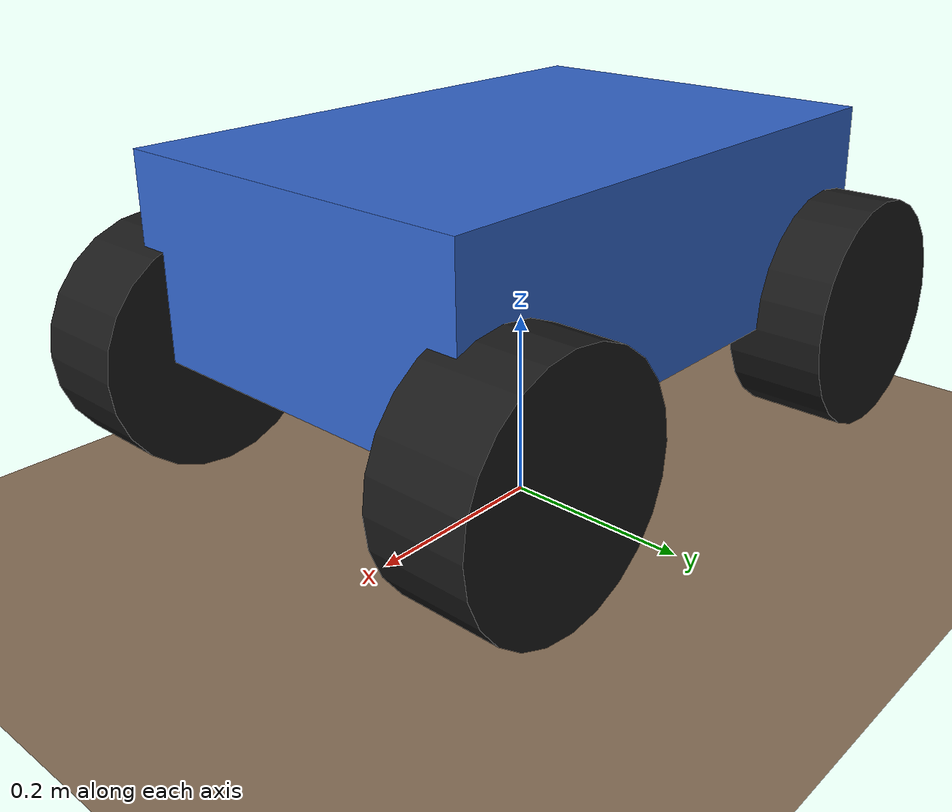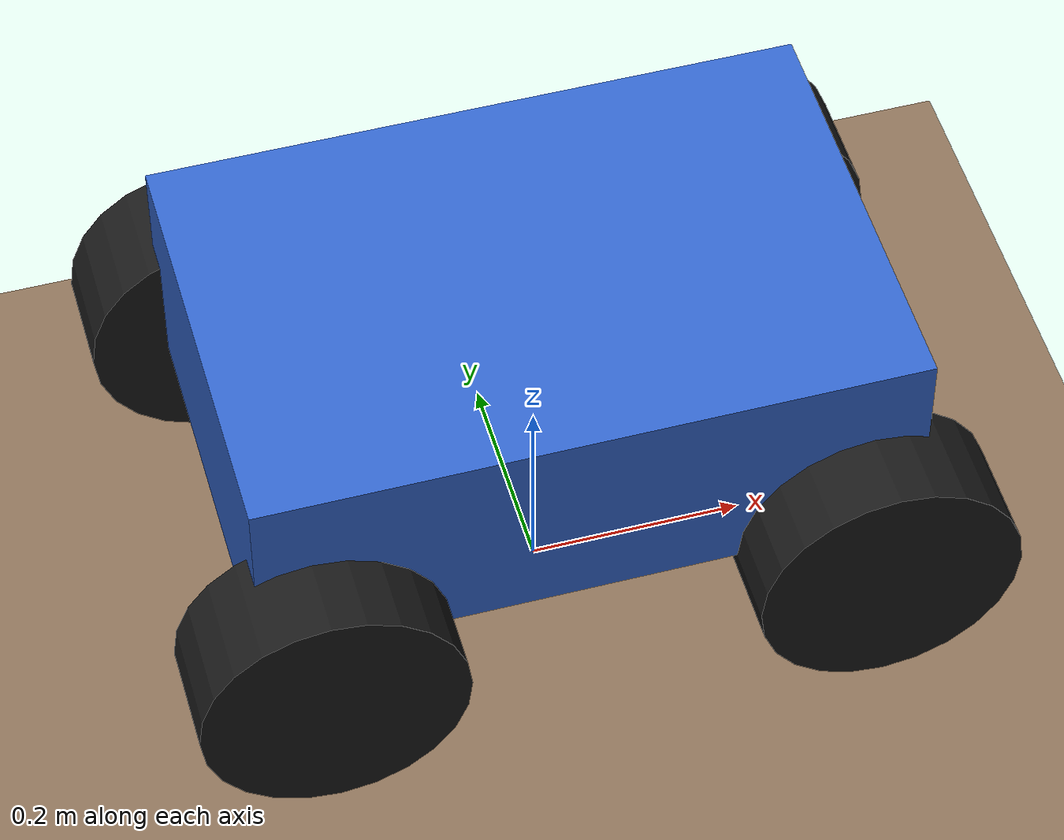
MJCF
<mujoco model="offroad_vehicle">
  <option gravity="0 0 -9.81" timestep="0.002"/>

  <default>
    <joint damping="0.5"/>
    <geom friction="1.0 0.1 0.1" contype="1" conaffinity="1"/>
  </default>

  <worldbody>
    <light pos="0 0 5" dir="0 0 -1" diffuse="1 1 1"/>
    <geom name="ground" type="plane" size="20 20 0.1" rgba="0.55 0.45 0.35 1"/>

    <body name="chassis" pos="0 0 0.3">
      <freejoint/>
      <geom name="chassis_geom" type="box" size="0.3 0.2 0.1" rgba="0.2 0.4 0.8 1" mass="5"/>
      <camera name="front_depth_cam" pos="0.6 0 0.2" xyaxes="0 -1 0  0.2 0 1"/>
        <body name="steer_fl" pos="0.25 0.22 -0.1">
        <joint name="steer_fl_joint" type="hinge" axis="0 0 1" range="-0.5 0.5"/>
        <inertial pos="0 0 0" mass="0.1" diaginertia="0.001 0.001 0.001"/>
        <body name="wheel_fl" pos="0 0 0">
          <joint name="wheel_fl_joint" type="hinge" axis="0 1 0"/>
          <geom name="wheel_fl_geom" type="cylinder" size="0.12 0.05" euler="90 0 0"
                rgba="0.1 0.1 0.1 1" mass="1"/>
        </body>
      </body>

      <!-- Front right wheel: steering joint + rolling joint -->
      <body name="steer_fr" pos="0.25 -0.22 -0.1">
        <joint name="steer_fr_joint" type="hinge" axis="0 0 1" range="-0.5 0.5"/>
        <inertial pos="0 0 0" mass="0.1" diaginertia="0.001 0.001 0.001"/>
        <body name="wheel_fr" pos="0 0 0">
          <joint name="wheel_fr_joint" type="hinge" axis="0 1 0"/>
          <geom name="wheel_fr_geom" type="cylinder" size="0.12 0.05" euler="90 0 0"
                rgba="0.1 0.1 0.1 1" mass="1"/>
        </body>
      </body>

      <!-- Rear left wheel: rolling joint only -->
      <body name="wheel_rl" pos="-0.25 0.22 -0.1">
        <joint name="wheel_rl_joint" type="hinge" axis="0 1 0"/>
        <geom name="wheel_rl_geom" type="cylinder" size="0.12 0.05" euler="90 0 0"
              rgba="0.1 0.1 0.1 1" mass="1"/>
      </body>

      <!-- Rear right wheel: rolling joint only -->
      <body name="wheel_rr" pos="-0.25 -0.22 -0.1">
        <joint name="wheel_rr_joint" type="hinge" axis="0 1 0"/>
        <geom name="wheel_rr_geom" type="cylinder" size="0.12 0.05" euler="90 0 0"
              rgba="0.1 0.1 0.1 1" mass="1"/>
      </body>
    </body>
  </worldbody>

  <!-- Couple both steering joints to move together (Ackermann simplification) -->
  <equality>
    <joint joint1="steer_fl_joint" joint2="steer_fr_joint" polycoef="0 1 0 0 0"/>
  </equality>

  <!-- Actuators: what your RL policy actually controls -->
  <actuator>
    <position name="steering" joint="steer_fl_joint" kp="20" kv="2" ctrlrange="-0.5 0.5"/>
    <velocity name="propulsion_rl" joint="wheel_rl_joint" kv="5" ctrlrange="-20 20"/>
    <velocity name="propulsion_rr" joint="wheel_rr_joint" kv="5" ctrlrange="-20 20"/>
  </actuator>
</mujoco>
